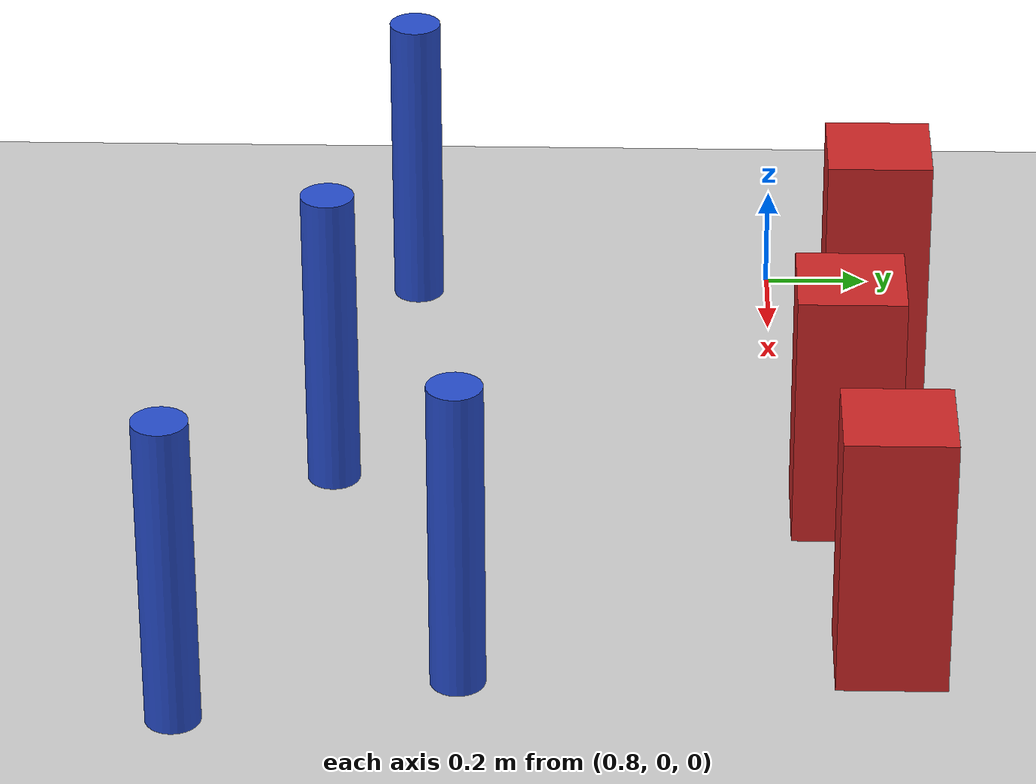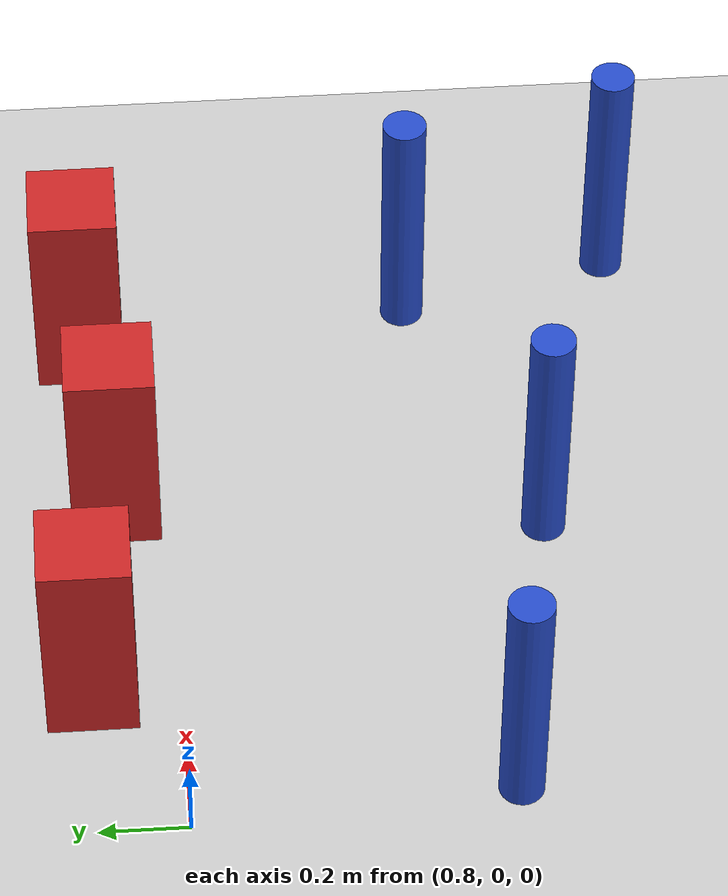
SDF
<sdf version="1.6">
 <world name="default">
  <model name="ground_plane">
   <static>1</static>
   <link name="link">
    <collision name="collision">
     <geometry><plane><normal>0 0 1</normal><size>100 100</size></plane></geometry>
     <surface><friction><ode><mu>100</mu><mu2>50</mu2></ode></friction></surface>
    </collision>
    <visual name="visual">
     <cast_shadows>0</cast_shadows>
     <geometry><plane><normal>0 0 1</normal><size>100 100</size></plane></geometry>
     <material>
      <ambient>1.0 1.0 1.0 1.0</ambient>
      <diffuse>0.8 0.8 0.8 1.0</diffuse>
      <specular>0.01 0.01 0.01 1.000000</specular>
     </material>
    </visual>
   </link>
  </model>
  <model name="pole_obstacle2">
   <static>true</static>
   <pose>2.30330990491 -0.570750876402 -9.47619616065e-06 5.49618799738e-07 2.36310414075e-07 -1.55090534793e-07</pose>
   <link name="link">
    <pose>0 0 0.3 0 -0 0</pose>
    <inertial>
     <mass>1</mass>
     <inertia><ixx>0.145833</ixx><ixy>0</ixy><ixz>0</ixz><iyy>0.145833</iyy><iyz>0</iyz><izz>0.125</izz></inertia>
    </inertial>
    <collision name="collision">
     <geometry><cylinder><radius>0.05</radius><length>.6</length></cylinder></geometry>
    </collision>
    <visual name="visual">
     <geometry><cylinder><radius>0.05</radius><length>.6</length></cylinder></geometry>
     <material>
      <script><name>Gazebo/Blue</name><uri>file://media/materials/scripts/gazebo.material</uri></script>
     </material>
    </visual>
   </link>
  </model>
  <model name="pole_obstacle31">
   <static>true</static>
   <pose>0.859033667772 -0.708765288475 -9.47619616065e-06 5.49618799737e-07 2.36310414058e-07 -1.55090534802e-07</pose>
   <link name="link">
    <pose>0 0 0.3 0 -0 0</pose>
    <inertial>
     <mass>1</mass>
     <inertia><ixx>0.145833</ixx><ixy>0</ixy><ixz>0</ixz><iyy>0.145833</iyy><iyz>0</iyz><izz>0.125</izz></inertia>
    </inertial>
    <collision name="collision">
     <geometry><cylinder><radius>0.05</radius><length>.6</length></cylinder></geometry>
    </collision>
    <visual name="visual">
     <geometry><cylinder><radius>0.05</radius><length>.6</length></cylinder></geometry>
     <material>
      <script><name>Gazebo/Blue</name><uri>file://media/materials/scripts/gazebo.material</uri></script>
     </material>
    </visual>
   </link>
  </model>
  <model name="pole_obstacle36">
   <static>true</static>
   <pose>1.60072143655 -0.834582067309 -9.47619616065e-06 5.49618799737e-07 2.36310414065e-07 -1.55090534798e-07</pose>
   <link name="link">
    <pose>0 0 0.3 0 -0 0</pose>
    <inertial>
     <mass>1</mass>
     <inertia><ixx>0.145833</ixx><ixy>0</ixy><ixz>0</ixz><iyy>0.145833</iyy><iyz>0</iyz><izz>0.125</izz></inertia>
    </inertial>
    <collision name="collision">
     <geometry><cylinder><radius>0.05</radius><length>.6</length></cylinder></geometry>
    </collision>
    <visual name="visual">
     <geometry><cylinder><radius>0.05</radius><length>.6</length></cylinder></geometry>
     <material>
      <script><name>Gazebo/Blue</name><uri>file://media/materials/scripts/gazebo.material</uri></script>
     </material>
    </visual>
   </link>
  </model>
  <model name="square_post_obstacle49">
   <static>true</static>
   <pose>1.71750888979 0.128950846656 -6.11067671241e-07 -5.50515727128e-06 -8.79689657224e-07 2.37013304536e-05</pose>
   <link name="link">
    <pose>0 0 0.25 0 -0 0</pose>
    <inertial>
     <mass>100</mass>
     <inertia>
      <ixx>0.166667</ixx>
      <ixy>0</ixy>
      <ixz>0</ixz>
      <iyy>0.166667</iyy>
      <iyz>0</iyz>
      <izz>0.166667</izz>
     </inertia>
    </inertial>
    <collision name="collision"><geometry><box><size>.2 .2 .5</size></box></geometry></collision>
    <visual name="visual">
     <geometry><box><size>.2 .2 .5</size></box></geometry>
     <material>
      <script><name>Gazebo/Red</name><uri>file://media/materials/scripts/gazebo.material</uri></script>
     </material>
    </visual>
   </link>
  </model>
  <model name="square_post_obstacle95">
   <static>true</static>
   <pose>1.17771723466 0.199140637478 -6.11067671241e-07 -5.50515727128e-06 -8.79689657224e-07 2.37013304536e-05</pose>
   <link name="link">
    <pose>0 0 0.25 0 -0 0</pose>
    <inertial>
     <mass>100</mass>
     <inertia>
      <ixx>0.166667</ixx>
      <ixy>0</ixy>
      <ixz>0</ixz>
      <iyy>0.166667</iyy>
      <iyz>0</iyz>
      <izz>0.166667</izz>
     </inertia>
    </inertial>
    <collision name="collision"><geometry><box><size>.2 .2 .5</size></box></geometry></collision>
    <visual name="visual">
     <geometry><box><size>.2 .2 .5</size></box></geometry>
     <material>
      <script><name>Gazebo/Red</name><uri>file://media/materials/scripts/gazebo.material</uri></script>
     </material>
    </visual>
   </link>
  </model>
  <model name="square_post_obstacle96">
   <static>true</static>
   <pose>2.21888715329 0.195829875069 -6.11067671241e-07 -5.50515727128e-06 -8.79689657224e-07 2.37013304536e-05</pose>
   <link name="link">
    <pose>0 0 0.25 0 -0 0</pose>
    <inertial>
     <mass>100</mass>
     <inertia>
      <ixx>0.166667</ixx>
      <ixy>0</ixy>
      <ixz>0</ixz>
      <iyy>0.166667</iyy>
      <iyz>0</iyz>
      <izz>0.166667</izz>
     </inertia>
    </inertial>
    <collision name="collision"><geometry><box><size>.2 .2 .5</size></box></geometry></collision>
    <visual name="visual">
     <geometry><box><size>.2 .2 .5</size></box></geometry>
     <material>
      <script><name>Gazebo/Red</name><uri>file://media/materials/scripts/gazebo.material</uri></script>
     </material>
    </visual>
   </link>
  </model>
  <model name="pole_obstacle131">
   <static>true</static>
   <pose>2.43298786045 -1.06352223911 -9.47619616065e-06 5.49618799737e-07 2.36310414072e-07 -1.55090534793e-07</pose>
   <link name="link">
    <pose>0 0 0.3 0 -0 0</pose>
    <inertial>
     <mass>1</mass>
     <inertia><ixx>0.145833</ixx><ixy>0</ixy><ixz>0</ixz><iyy>0.145833</iyy><iyz>0</iyz><izz>0.125</izz></inertia>
    </inertial>
    <collision name="collision">
     <geometry><cylinder><radius>0.05</radius><length>.6</length></cylinder></geometry>
    </collision>
    <visual name="visual">
     <geometry><cylinder><radius>0.05</radius><length>.6</length></cylinder></geometry>
     <material>
      <script><name>Gazebo/Blue</name><uri>file://media/materials/scripts/gazebo.material</uri></script>
     </material>
    </visual>
   </link>
  </model>
 </world>
</sdf>
